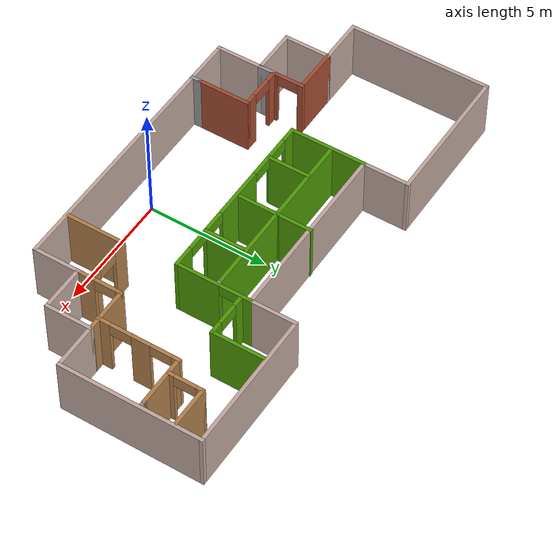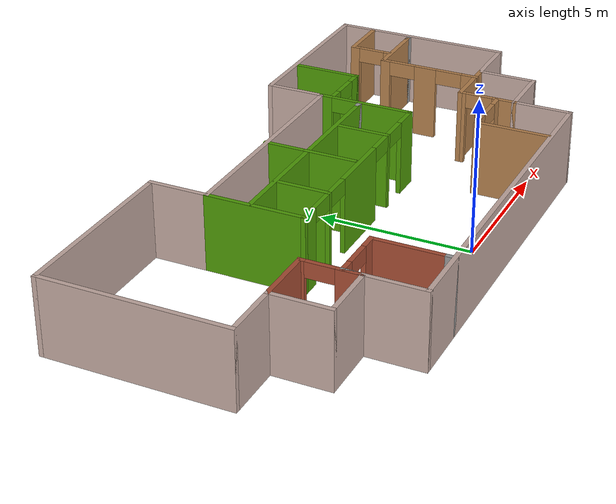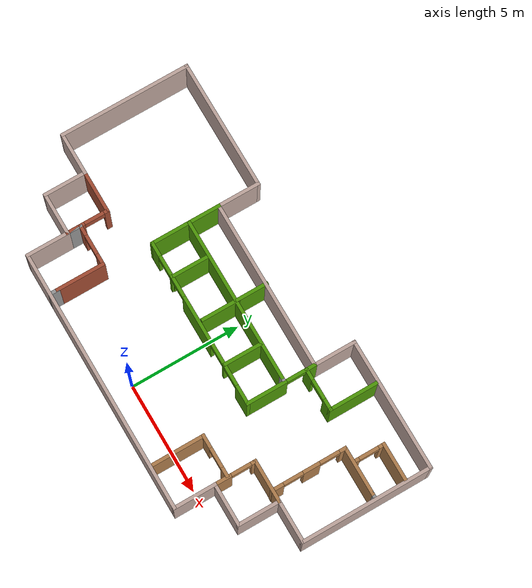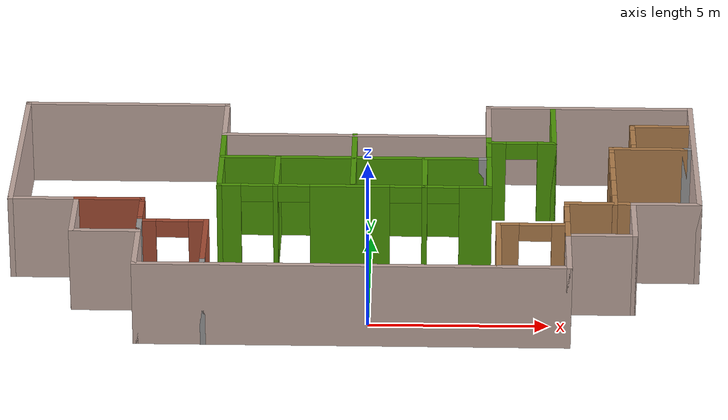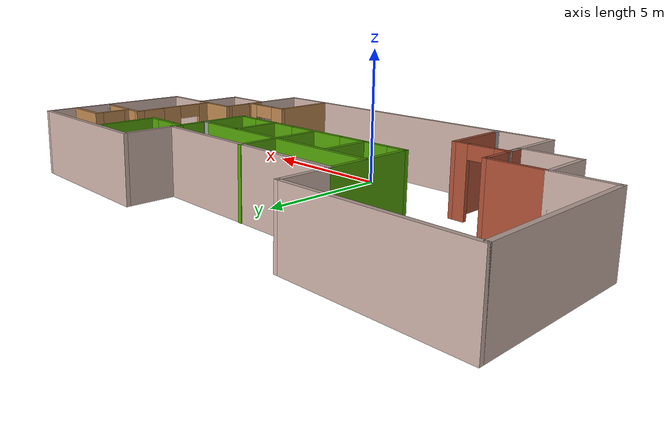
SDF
<?xml version='1.0'?>
<sdf version='1.6'>
  <model name='office'>
    <pose frame=''>-0.425261 3.65756 0 0 -0 0</pose>
    <link name='Wall_10'>
      <collision name='Wall_10_Collision'>
        <geometry>
          <box>
            <size>2 0.15 2.5</size>
          </box>
        </geometry>
        <pose frame=''>0 0 1.25 0 -0 0</pose>
      </collision>
      <visual name='Wall_10_Visual'>
        <pose frame=''>0 0 1.25 0 -0 0</pose>
        <geometry>
          <box>
            <size>2 0.15 2.5</size>
          </box>
        </geometry>
        <material>
          <script>
            <uri>file://media/materials/scripts/gazebo.material</uri>
            <name>Gazebo/Grey</name>
          </script>
          <ambient>0.760784 0.662745 0.627451 1</ambient>
        </material>
        <meta>
          <layer>0</layer>
        </meta>
      </visual>
      <pose frame=''>6.85 -2.925 0 0 -0 0</pose>
    </link>
    <link name='Wall_11'>
      <collision name='Wall_11_Collision'>
        <geometry>
          <box>
            <size>2 0.15 2.5</size>
          </box>
        </geometry>
        <pose frame=''>0 0 1.25 0 -0 0</pose>
      </collision>
      <visual name='Wall_11_Visual'>
        <pose frame=''>0 0 1.25 0 -0 0</pose>
        <geometry>
          <box>
            <size>2 0.15 2.5</size>
          </box>
        </geometry>
        <material>
          <script>
            <uri>file://media/materials/scripts/gazebo.material</uri>
            <name>Gazebo/Grey</name>
          </script>
          <ambient>0.760784 0.662745 0.627451 1</ambient>
        </material>
        <meta>
          <layer>0</layer>
        </meta>
      </visual>
      <pose frame=''>7.775 -2 0 0 -0 1.5708</pose>
    </link>
    <link name='Wall_12'>
      <collision name='Wall_12_Collision'>
        <geometry>
          <box>
            <size>2 0.15 2.5</size>
          </box>
        </geometry>
        <pose frame=''>0 0 1.25 0 -0 0</pose>
      </collision>
      <visual name='Wall_12_Visual'>
        <pose frame=''>0 0 1.25 0 -0 0</pose>
        <geometry>
          <box>
            <size>2 0.15 2.5</size>
          </box>
        </geometry>
        <material>
          <script>
            <uri>file://media/materials/scripts/gazebo.material</uri>
            <name>Gazebo/Grey</name>
          </script>
          <ambient>0.760784 0.662745 0.627451 1</ambient>
        </material>
        <meta>
          <layer>0</layer>
        </meta>
      </visual>
      <pose frame=''>8.7 -1.075 0 0 -0 0</pose>
    </link>
    <link name='Wall_13'>
      <collision name='Wall_13_Collision'>
        <geometry>
          <box>
            <size>6 0.15 2.5</size>
          </box>
        </geometry>
        <pose frame=''>0 0 1.25 0 -0 0</pose>
      </collision>
      <visual name='Wall_13_Visual'>
        <pose frame=''>0 0 1.25 0 -0 0</pose>
        <geometry>
          <box>
            <size>6 0.15 2.5</size>
          </box>
        </geometry>
        <material>
          <script>
            <uri>file://media/materials/scripts/gazebo.material</uri>
            <name>Gazebo/Grey</name>
          </script>
          <ambient>0.760784 0.662745 0.627451 1</ambient>
        </material>
        <meta>
          <layer>0</layer>
        </meta>
      </visual>
      <pose frame=''>9.625 1.85 0 0 -0 1.5708</pose>
    </link>
    <link name='Wall_14'>
      <collision name='Wall_14_Collision'>
        <geometry>
          <box>
            <size>6 0.15 2.5</size>
          </box>
        </geometry>
        <pose frame=''>0 0 1.25 0 -0 0</pose>
      </collision>
      <visual name='Wall_14_Visual'>
        <pose frame=''>0 0 1.25 0 -0 0</pose>
        <geometry>
          <box>
            <size>6 0.15 2.5</size>
          </box>
        </geometry>
        <material>
          <script>
            <uri>file://media/materials/scripts/gazebo.material</uri>
            <name>Gazebo/Grey</name>
          </script>
          <ambient>0.760784 0.662745 0.627451 1</ambient>
        </material>
        <meta>
          <layer>0</layer>
        </meta>
      </visual>
      <pose frame=''>6.7 4.775 0 0 -0 3.14159</pose>
    </link>
    <link name='Wall_15'>
      <collision name='Wall_15_Collision'>
        <geometry>
          <box>
            <size>2 0.15 2.5</size>
          </box>
        </geometry>
        <pose frame=''>0 0 1.25 0 -0 0</pose>
      </collision>
      <visual name='Wall_15_Visual'>
        <pose frame=''>0 0 1.25 0 -0 0</pose>
        <geometry>
          <box>
            <size>2 0.15 2.5</size>
          </box>
        </geometry>
        <material>
          <script>
            <uri>file://media/materials/scripts/gazebo.material</uri>
            <name>Gazebo/Grey</name>
          </script>
          <ambient>0.760784 0.662745 0.627451 1</ambient>
        </material>
        <meta>
          <layer>0</layer>
        </meta>
      </visual>
      <pose frame=''>3.775 3.85 0 0 -0 -1.5708</pose>
    </link>
    <link name='Wall_16'>
      <collision name='Wall_16_Collision'>
        <geometry>
          <box>
            <size>7.75 0.15 2.5</size>
          </box>
        </geometry>
        <pose frame=''>0 0 1.25 0 -0 0</pose>
      </collision>
      <visual name='Wall_16_Visual'>
        <pose frame=''>0 0 1.25 0 -0 0</pose>
        <geometry>
          <box>
            <size>7.75 0.15 2.5</size>
          </box>
        </geometry>
        <material>
          <script>
            <uri>file://media/materials/scripts/gazebo.material</uri>
            <name>Gazebo/Grey</name>
          </script>
          <ambient>0.760784 0.662745 0.627451 1</ambient>
        </material>
        <meta>
          <layer>0</layer>
        </meta>
      </visual>
      <pose frame=''>-0.025 2.925 0 0 -0 3.14159</pose>
    </link>
    <link name='Wall_17'>
      <collision name='Wall_17_Collision'>
        <geometry>
          <box>
            <size>2 0.15 2.5</size>
          </box>
        </geometry>
        <pose frame=''>0 0 1.25 0 -0 0</pose>
      </collision>
      <visual name='Wall_17_Visual'>
        <pose frame=''>0 0 1.25 0 -0 0</pose>
        <geometry>
          <box>
            <size>2 0.15 2.5</size>
          </box>
        </geometry>
        <material>
          <script>
            <uri>file://media/materials/scripts/gazebo.material</uri>
            <name>Gazebo/Grey</name>
          </script>
          <ambient>0.760784 0.662745 0.627451 1</ambient>
        </material>
        <meta>
          <layer>0</layer>
        </meta>
      </visual>
      <pose frame=''>-3.825 3.85 0 0 -0 1.5708</pose>
    </link>
    <link name='Wall_18'>
      <collision name='Wall_18_Collision'>
        <geometry>
          <box>
            <size>5.95 0.15 2.5</size>
          </box>
        </geometry>
        <pose frame=''>0 0 1.25 0 -0 0</pose>
      </collision>
      <visual name='Wall_18_Visual'>
        <pose frame=''>0 0 1.25 0 -0 0</pose>
        <geometry>
          <box>
            <size>5.95 0.15 2.5</size>
          </box>
        </geometry>
        <material>
          <script>
            <uri>file://media/materials/scripts/gazebo.material</uri>
            <name>Gazebo/Grey</name>
          </script>
          <ambient>0.760784 0.662745 0.627451 1</ambient>
        </material>
        <meta>
          <layer>0</layer>
        </meta>
      </visual>
      <pose frame=''>-6.725 4.775 0 0 -0 3.14159</pose>
    </link>
    <link name='Wall_19'>
      <collision name='Wall_19_Collision'>
        <geometry>
          <box>
            <size>0.15 0.15 2.5</size>
          </box>
        </geometry>
        <pose frame=''>0 0 1.25 0 -0 0</pose>
      </collision>
      <visual name='Wall_19_Visual'>
        <pose frame=''>0 0 1.25 0 -0 0</pose>
        <geometry>
          <box>
            <size>0.15 0.15 2.5</size>
          </box>
        </geometry>
        <material>
          <script>
            <uri>file://media/materials/scripts/gazebo.material</uri>
            <name>Gazebo/Grey</name>
          </script>
          <ambient>0.760784 0.662745 0.627451 1</ambient>
        </material>
        <meta>
          <layer>0</layer>
        </meta>
      </visual>
      <pose frame=''>-9.625 4.775 0 0 -0 0</pose>
    </link>
    <link name='Wall_2'>
      <collision name='Wall_2_Collision'>
        <geometry>
          <box>
            <size>6 0.15 2.5</size>
          </box>
        </geometry>
        <pose frame=''>0 0 1.25 0 -0 0</pose>
      </collision>
      <visual name='Wall_2_Visual'>
        <pose frame=''>0 0 1.25 0 -0 0</pose>
        <geometry>
          <box>
            <size>6 0.15 2.5</size>
          </box>
        </geometry>
        <material>
          <script>
            <uri>file://media/materials/scripts/gazebo.material</uri>
            <name>Gazebo/Grey</name>
          </script>
          <ambient>0.760784 0.662745 0.627451 1</ambient>
        </material>
        <meta>
          <layer>0</layer>
        </meta>
      </visual>
      <pose frame=''>-9.625 1.85 0 0 -0 -1.5708</pose>
    </link>
    <link name='Wall_21'>
      <collision name='Wall_21_Collision'>
        <geometry>
          <box>
            <size>2 0.15 2.5</size>
          </box>
        </geometry>
        <pose frame=''>0 0 1.25 0 -0 0</pose>
      </collision>
      <visual name='Wall_21_Visual'>
        <pose frame=''>0 0 1.25 0 -0 0</pose>
        <geometry>
          <box>
            <size>2 0.15 2.5</size>
          </box>
        </geometry>
        <material>
          <script>
            <uri>file://media/materials/scripts/gazebo.material</uri>
            <name>Gazebo/Bricks</name>
          </script>
          <ambient>1 0.764706 0.305882 1</ambient>
        </material>
        <meta>
          <layer>0</layer>
        </meta>
      </visual>
      <pose frame=''>-6.85 -1.075 0 0 -0 0</pose>
    </link>
    <link name='Wall_22'>
      <pose frame=''>-5.925 -2 0 0 -0 -1.5708</pose>
      <visual name='Wall_22_Visual_0'>
        <pose frame=''>-0.880847 0 1.25 0 -0 0</pose>
        <geometry>
          <box>
            <size>0.238307 0.15 2.5</size>
          </box>
        </geometry>
        <material>
          <script>
            <uri>file://media/materials/scripts/gazebo.material</uri>
            <name>Gazebo/Bricks</name>
          </script>
          <ambient>1 0.764706 0.305882 1</ambient>
        </material>
        <meta>
          <layer>0</layer>
        </meta>
      </visual>
      <collision name='Wall_22_Collision_0'>
        <geometry>
          <box>
            <size>0.238307 0.15 2.5</size>
          </box>
        </geometry>
        <pose frame=''>-0.880847 0 1.25 0 -0 0</pose>
      </collision>
      <visual name='Wall_22_Visual_1'>
        <pose frame=''>0.569153 0 1.25 0 -0 0</pose>
        <geometry>
          <box>
            <size>0.861693 0.15 2.5</size>
          </box>
        </geometry>
        <material>
          <script>
            <uri>file://media/materials/scripts/gazebo.material</uri>
            <name>Gazebo/Bricks</name>
          </script>
          <ambient>1 0.764706 0.305882 1</ambient>
        </material>
        <meta>
          <layer>0</layer>
        </meta>
      </visual>
      <collision name='Wall_22_Collision_1'>
        <geometry>
          <box>
            <size>0.861693 0.15 2.5</size>
          </box>
        </geometry>
        <pose frame=''>0.569153 0 1.25 0 -0 0</pose>
      </collision>
      <visual name='Wall_22_Visual_2'>
        <pose frame=''>-0.311693 0 2.25 0 -0 0</pose>
        <geometry>
          <box>
            <size>0.9 0.15 0.5</size>
          </box>
        </geometry>
        <material>
          <script>
            <uri>file://media/materials/scripts/gazebo.material</uri>
            <name>Gazebo/Bricks</name>
          </script>
          <ambient>1 0.764706 0.305882 1</ambient>
        </material>
        <meta>
          <layer>0</layer>
        </meta>
      </visual>
      <collision name='Wall_22_Collision_2'>
        <geometry>
          <box>
            <size>0.9 0.15 0.5</size>
          </box>
        </geometry>
        <pose frame=''>-0.311693 0 2.25 0 -0 0</pose>
      </collision>
    </link>
    <link name='Wall_23'>
      <collision name='Wall_23_Collision'>
        <geometry>
          <box>
            <size>0.75 0.15 2.5</size>
          </box>
        </geometry>
        <pose frame=''>0 0 1.25 0 -0 0</pose>
      </collision>
      <visual name='Wall_23_Visual'>
        <pose frame=''>0 0 1.25 0 -0 0</pose>
        <geometry>
          <box>
            <size>0.75 0.15 2.5</size>
          </box>
        </geometry>
        <material>
          <script>
            <uri>file://media/materials/scripts/gazebo.material</uri>
            <name>Gazebo/Grey</name>
          </script>
          <ambient>1 1 1 1</ambient>
        </material>
        <meta>
          <layer>0</layer>
        </meta>
      </visual>
      <pose frame=''>-5.925 -2.625 0 0 -0 1.5708</pose>
    </link>
    <link name='Wall_24'>
      <pose frame=''>-5 -2.325 0 0 -0 0</pose>
      <visual name='Wall_24_Visual_0'>
        <pose frame=''>-0.733979 0 1.25 0 -0 0</pose>
        <geometry>
          <box>
            <size>0.532042 0.15 2.5</size>
          </box>
        </geometry>
        <material>
          <script>
            <uri>file://media/materials/scripts/gazebo.material</uri>
            <name>Gazebo/Bricks</name>
          </script>
          <ambient>1 0.764706 0.305882 1</ambient>
        </material>
        <meta>
          <layer>0</layer>
        </meta>
      </visual>
      <collision name='Wall_24_Collision_0'>
        <geometry>
          <box>
            <size>0.532042 0.15 2.5</size>
          </box>
        </geometry>
        <pose frame=''>-0.733979 0 1.25 0 -0 0</pose>
      </collision>
      <visual name='Wall_24_Visual_1'>
        <pose frame=''>0.716021 0 1.25 0 -0 0</pose>
        <geometry>
          <box>
            <size>0.567958 0.15 2.5</size>
          </box>
        </geometry>
        <material>
          <script>
            <uri>file://media/materials/scripts/gazebo.material</uri>
            <name>Gazebo/Bricks</name>
          </script>
          <ambient>1 0.764706 0.305882 1</ambient>
        </material>
        <meta>
          <layer>0</layer>
        </meta>
      </visual>
      <collision name='Wall_24_Collision_1'>
        <geometry>
          <box>
            <size>0.567958 0.15 2.5</size>
          </box>
        </geometry>
        <pose frame=''>0.716021 0 1.25 0 -0 0</pose>
      </collision>
      <visual name='Wall_24_Visual_2'>
        <pose frame=''>-0.017958 0 2.25 0 -0 0</pose>
        <geometry>
          <box>
            <size>0.9 0.15 0.5</size>
          </box>
        </geometry>
        <material>
          <script>
            <uri>file://media/materials/scripts/gazebo.material</uri>
            <name>Gazebo/Bricks</name>
          </script>
          <ambient>1 0.764706 0.305882 1</ambient>
        </material>
        <meta>
          <layer>0</layer>
        </meta>
      </visual>
      <collision name='Wall_24_Collision_2'>
        <geometry>
          <box>
            <size>0.9 0.15 0.5</size>
          </box>
        </geometry>
        <pose frame=''>-0.017958 0 2.25 0 -0 0</pose>
      </collision>
    </link>
    <link name='Wall_25'>
      <collision name='Wall_25_Collision'>
        <geometry>
          <box>
            <size>2.25 0.15 2.5</size>
          </box>
        </geometry>
        <pose frame=''>0 0 1.25 0 -0 0</pose>
      </collision>
      <visual name='Wall_25_Visual'>
        <pose frame=''>0 0 1.25 0 -0 0</pose>
        <geometry>
          <box>
            <size>2.25 0.15 2.5</size>
          </box>
        </geometry>
        <material>
          <script>
            <uri>file://media/materials/scripts/gazebo.material</uri>
            <name>Gazebo/Bricks</name>
          </script>
          <ambient>1 0.764706 0.305882 1</ambient>
        </material>
        <meta>
          <layer>0</layer>
        </meta>
      </visual>
      <pose frame=''>-4.075 -3.375 0 0 -0 -1.5708</pose>
    </link>
    <link name='Wall_26'>
      <collision name='Wall_26_Collision'>
        <geometry>
          <box>
            <size>0.5 0.15 2.5</size>
          </box>
        </geometry>
        <pose frame=''>0 0 1.25 0 -0 0</pose>
      </collision>
      <visual name='Wall_26_Visual'>
        <pose frame=''>0 0 1.25 0 -0 0</pose>
        <geometry>
          <box>
            <size>0.5 0.15 2.5</size>
          </box>
        </geometry>
        <material>
          <script>
            <uri>file://media/materials/scripts/gazebo.material</uri>
            <name>Gazebo/Grey</name>
          </script>
          <ambient>1 1 1 1</ambient>
        </material>
        <meta>
          <layer>0</layer>
        </meta>
      </visual>
      <pose frame=''>-4.075 -4.6 0 0 -0 -1.5708</pose>
    </link>
    <link name='Wall_33'>
      <collision name='Wall_33_Collision'>
        <geometry>
          <box>
            <size>2 0.15 2.5</size>
          </box>
        </geometry>
        <pose frame=''>0 0 1.25 0 -0 0</pose>
      </collision>
      <visual name='Wall_33_Visual'>
        <pose frame=''>0 0 1.25 0 -0 0</pose>
        <geometry>
          <box>
            <size>2 0.15 2.5</size>
          </box>
        </geometry>
        <material>
          <script>
            <uri>file://media/materials/scripts/gazebo.material</uri>
            <name>Gazebo/Wood</name>
          </script>
          <ambient>0.996078 0.47451 0.0196078 1</ambient>
        </material>
        <meta>
          <layer>0</layer>
        </meta>
      </visual>
      <pose frame=''>6.85 -1.075 0 0 -0 3.14159</pose>
    </link>
    <link name='Wall_34'>
      <pose frame=''>5.925 -2 0 0 -0 -1.5708</pose>
      <visual name='Wall_34_Visual_0'>
        <pose frame=''>-0.860151 0 1.25 0 -0 0</pose>
        <geometry>
          <box>
            <size>0.279699 0.15 2.5</size>
          </box>
        </geometry>
        <material>
          <script>
            <uri>file://media/materials/scripts/gazebo.material</uri>
            <name>Gazebo/Wood</name>
          </script>
          <ambient>0.996078 0.47451 0.0196078 1</ambient>
        </material>
        <meta>
          <layer>0</layer>
        </meta>
      </visual>
      <collision name='Wall_34_Collision_0'>
        <geometry>
          <box>
            <size>0.279699 0.15 2.5</size>
          </box>
        </geometry>
        <pose frame=''>-0.860151 0 1.25 0 -0 0</pose>
      </collision>
      <visual name='Wall_34_Visual_1'>
        <pose frame=''>0.589849 0 1.25 0 -0 0</pose>
        <geometry>
          <box>
            <size>0.820301 0.15 2.5</size>
          </box>
        </geometry>
        <material>
          <script>
            <uri>file://media/materials/scripts/gazebo.material</uri>
            <name>Gazebo/Wood</name>
          </script>
          <ambient>0.996078 0.47451 0.0196078 1</ambient>
        </material>
        <meta>
          <layer>0</layer>
        </meta>
      </visual>
      <collision name='Wall_34_Collision_1'>
        <geometry>
          <box>
            <size>0.820301 0.15 2.5</size>
          </box>
        </geometry>
        <pose frame=''>0.589849 0 1.25 0 -0 0</pose>
      </collision>
      <visual name='Wall_34_Visual_2'>
        <pose frame=''>-0.270301 0 2.25 0 -0 0</pose>
        <geometry>
          <box>
            <size>0.9 0.15 0.5</size>
          </box>
        </geometry>
        <material>
          <script>
            <uri>file://media/materials/scripts/gazebo.material</uri>
            <name>Gazebo/Wood</name>
          </script>
          <ambient>0.996078 0.47451 0.0196078 1</ambient>
        </material>
        <meta>
          <layer>0</layer>
        </meta>
      </visual>
      <collision name='Wall_34_Collision_2'>
        <geometry>
          <box>
            <size>0.9 0.15 0.5</size>
          </box>
        </geometry>
        <pose frame=''>-0.270301 0 2.25 0 -0 0</pose>
      </collision>
    </link>
    <link name='Wall_36'>
      <pose frame=''>4.93629 -2.34078 0 0 -0 3.14159</pose>
      <visual name='Wall_36_Visual_0'>
        <pose frame=''>-0.772106 0 1.25 0 -0 0</pose>
        <geometry>
          <box>
            <size>0.455789 0.15 2.5</size>
          </box>
        </geometry>
        <material>
          <script>
            <uri>file://media/materials/scripts/gazebo.material</uri>
            <name>Gazebo/Wood</name>
          </script>
          <ambient>0.996078 0.47451 0.0196078 1</ambient>
        </material>
        <meta>
          <layer>0</layer>
        </meta>
      </visual>
      <collision name='Wall_36_Collision_0'>
        <geometry>
          <box>
            <size>0.455789 0.15 2.5</size>
          </box>
        </geometry>
        <pose frame=''>-0.772106 0 1.25 0 -0 0</pose>
      </collision>
      <visual name='Wall_36_Visual_1'>
        <pose frame=''>0.677894 0 1.25 0 -0 0</pose>
        <geometry>
          <box>
            <size>0.644211 0.15 2.5</size>
          </box>
        </geometry>
        <material>
          <script>
            <uri>file://media/materials/scripts/gazebo.material</uri>
            <name>Gazebo/Wood</name>
          </script>
          <ambient>0.996078 0.47451 0.0196078 1</ambient>
        </material>
        <meta>
          <layer>0</layer>
        </meta>
      </visual>
      <collision name='Wall_36_Collision_1'>
        <geometry>
          <box>
            <size>0.644211 0.15 2.5</size>
          </box>
        </geometry>
        <pose frame=''>0.677894 0 1.25 0 -0 0</pose>
      </collision>
      <visual name='Wall_36_Visual_2'>
        <pose frame=''>-0.094211 0 2.25 0 -0 0</pose>
        <geometry>
          <box>
            <size>0.9 0.15 0.5</size>
          </box>
        </geometry>
        <material>
          <script>
            <uri>file://media/materials/scripts/gazebo.material</uri>
            <name>Gazebo/Wood</name>
          </script>
          <ambient>0.996078 0.47451 0.0196078 1</ambient>
        </material>
        <meta>
          <layer>0</layer>
        </meta>
      </visual>
      <collision name='Wall_36_Collision_2'>
        <geometry>
          <box>
            <size>0.9 0.15 0.5</size>
          </box>
        </geometry>
        <pose frame=''>-0.094211 0 2.25 0 -0 0</pose>
      </collision>
    </link>
    <link name='Wall_37'>
      <collision name='Wall_37_Collision'>
        <geometry>
          <box>
            <size>2.5 0.15 2.5</size>
          </box>
        </geometry>
        <pose frame=''>0 0 1.25 0 -0 0</pose>
      </collision>
      <visual name='Wall_37_Visual'>
        <pose frame=''>0 0 1.25 0 -0 0</pose>
        <geometry>
          <box>
            <size>2.5 0.15 2.5</size>
          </box>
        </geometry>
        <material>
          <script>
            <uri>file://media/materials/scripts/gazebo.material</uri>
            <name>Gazebo/Wood</name>
          </script>
          <ambient>0.996078 0.47451 0.0196078 1</ambient>
        </material>
        <meta>
          <layer>0</layer>
        </meta>
      </visual>
      <pose frame=''>4.01129 -3.51578 0 0 -0 -1.5708</pose>
    </link>
    <link name='Wall_39'>
      <pose frame=''>7.2711 0.584434 0 0 -0 1.5708</pose>
      <visual name='Wall_39_Visual_0'>
        <pose frame=''>-1.45906 0 1.25 0 -0 0</pose>
        <geometry>
          <box>
            <size>0.581879 0.15 2.5</size>
          </box>
        </geometry>
        <material>
          <script>
            <uri>file://media/materials/scripts/gazebo.material</uri>
            <name>Gazebo/Wood</name>
          </script>
          <ambient>0.996078 0.47451 0.0196078 1</ambient>
        </material>
        <meta>
          <layer>0</layer>
        </meta>
      </visual>
      <collision name='Wall_39_Collision_0'>
        <geometry>
          <box>
            <size>0.581879 0.15 2.5</size>
          </box>
        </geometry>
        <pose frame=''>-1.45906 0 1.25 0 -0 0</pose>
      </collision>
      <visual name='Wall_39_Visual_1'>
        <pose frame=''>0.119786 0 1.25 0 -0 0</pose>
        <geometry>
          <box>
            <size>0.775813 0.15 2.5</size>
          </box>
        </geometry>
        <material>
          <script>
            <uri>file://media/materials/scripts/gazebo.material</uri>
            <name>Gazebo/Wood</name>
          </script>
          <ambient>0.996078 0.47451 0.0196078 1</ambient>
        </material>
        <meta>
          <layer>0</layer>
        </meta>
      </visual>
      <collision name='Wall_39_Collision_1'>
        <geometry>
          <box>
            <size>0.775813 0.15 2.5</size>
          </box>
        </geometry>
        <pose frame=''>0.119786 0 1.25 0 -0 0</pose>
      </collision>
      <visual name='Wall_39_Visual_2'>
        <pose frame=''>1.57885 0 1.25 0 -0 0</pose>
        <geometry>
          <box>
            <size>0.342308 0.15 2.5</size>
          </box>
        </geometry>
        <material>
          <script>
            <uri>file://media/materials/scripts/gazebo.material</uri>
            <name>Gazebo/Wood</name>
          </script>
          <ambient>0.996078 0.47451 0.0196078 1</ambient>
        </material>
        <meta>
          <layer>0</layer>
        </meta>
      </visual>
      <collision name='Wall_39_Collision_2'>
        <geometry>
          <box>
            <size>0.342308 0.15 2.5</size>
          </box>
        </geometry>
        <pose frame=''>1.57885 0 1.25 0 -0 0</pose>
      </collision>
      <visual name='Wall_39_Visual_3'>
        <pose frame=''>-0.718121 0 2.25 0 -0 0</pose>
        <geometry>
          <box>
            <size>0.9 0.15 0.5</size>
          </box>
        </geometry>
        <material>
          <script>
            <uri>file://media/materials/scripts/gazebo.material</uri>
            <name>Gazebo/Wood</name>
          </script>
          <ambient>0.996078 0.47451 0.0196078 1</ambient>
        </material>
        <meta>
          <layer>0</layer>
        </meta>
      </visual>
      <collision name='Wall_39_Collision_3'>
        <geometry>
          <box>
            <size>0.9 0.15 0.5</size>
          </box>
        </geometry>
        <pose frame=''>-0.718121 0 2.25 0 -0 0</pose>
      </collision>
      <visual name='Wall_39_Visual_4'>
        <pose frame=''>0.957692 0 2.25 0 -0 0</pose>
        <geometry>
          <box>
            <size>0.9 0.15 0.5</size>
          </box>
        </geometry>
        <material>
          <script>
            <uri>file://media/materials/scripts/gazebo.material</uri>
            <name>Gazebo/Wood</name>
          </script>
          <ambient>0.996078 0.47451 0.0196078 1</ambient>
        </material>
        <meta>
          <layer>0</layer>
        </meta>
      </visual>
      <collision name='Wall_39_Collision_4'>
        <geometry>
          <box>
            <size>0.9 0.15 0.5</size>
          </box>
        </geometry>
        <pose frame=''>0.957692 0 2.25 0 -0 0</pose>
      </collision>
    </link>
    <link name='Wall_4'>
      <collision name='Wall_4_Collision'>
        <geometry>
          <box>
            <size>2 0.15 2.5</size>
          </box>
        </geometry>
        <pose frame=''>0 0 1.25 0 -0 0</pose>
      </collision>
      <visual name='Wall_4_Visual'>
        <pose frame=''>0 0 1.25 0 -0 0</pose>
        <geometry>
          <box>
            <size>2 0.15 2.5</size>
          </box>
        </geometry>
        <material>
          <script>
            <uri>file://media/materials/scripts/gazebo.material</uri>
            <name>Gazebo/Grey</name>
          </script>
          <ambient>0.760784 0.662745 0.627451 1</ambient>
        </material>
        <meta>
          <layer>0</layer>
        </meta>
      </visual>
      <pose frame=''>-8.7 -1.075 0 0 -0 0</pose>
    </link>
    <link name='Wall_40'>
      <collision name='Wall_40_Collision'>
        <geometry>
          <box>
            <size>2.25 0.15 2.5</size>
          </box>
        </geometry>
        <pose frame=''>0 0 1.25 0 -0 0</pose>
      </collision>
      <visual name='Wall_40_Visual'>
        <pose frame=''>0 0 1.25 0 -0 0</pose>
        <geometry>
          <box>
            <size>2.25 0.15 2.5</size>
          </box>
        </geometry>
        <material>
          <script>
            <uri>file://media/materials/scripts/gazebo.material</uri>
            <name>Gazebo/Wood</name>
          </script>
          <ambient>0.996078 0.47451 0.0196078 1</ambient>
        </material>
        <meta>
          <layer>0</layer>
        </meta>
      </visual>
      <pose frame=''>8.3211 2.25943 0 0 -0 0</pose>
    </link>
    <link name='Wall_41'>
      <collision name='Wall_41_Collision'>
        <geometry>
          <box>
            <size>0.25 0.15 2.5</size>
          </box>
        </geometry>
        <pose frame=''>0 0 1.25 0 -0 0</pose>
      </collision>
      <visual name='Wall_41_Visual'>
        <pose frame=''>0 0 1.25 0 -0 0</pose>
        <geometry>
          <box>
            <size>0.25 0.15 2.5</size>
          </box>
        </geometry>
        <material>
          <script>
            <uri>file://media/materials/scripts/gazebo.material</uri>
            <name>Gazebo/Grey</name>
          </script>
          <ambient>1 1 1 1</ambient>
        </material>
        <meta>
          <layer>0</layer>
        </meta>
      </visual>
      <pose frame=''>9.4211 2.25943 0 0 -0 0</pose>
    </link>
    <link name='Wall_43'>
      <pose frame=''>7.9095 2.98926 0 0 -0 1.5708</pose>
      <visual name='Wall_43_Visual_0'>
        <pose frame=''>-0.612012 0 1.25 0 -0 0</pose>
        <geometry>
          <box>
            <size>0.275977 0.15 2.5</size>
          </box>
        </geometry>
        <material>
          <script>
            <uri>file://media/materials/scripts/gazebo.material</uri>
            <name>Gazebo/Wood</name>
          </script>
          <ambient>0.996078 0.47451 0.0196078 1</ambient>
        </material>
        <meta>
          <layer>0</layer>
        </meta>
      </visual>
      <collision name='Wall_43_Collision_0'>
        <geometry>
          <box>
            <size>0.275977 0.15 2.5</size>
          </box>
        </geometry>
        <pose frame=''>-0.612012 0 1.25 0 -0 0</pose>
      </collision>
      <visual name='Wall_43_Visual_1'>
        <pose frame=''>0.587988 0 1.25 0 -0 0</pose>
        <geometry>
          <box>
            <size>0.324023 0.15 2.5</size>
          </box>
        </geometry>
        <material>
          <script>
            <uri>file://media/materials/scripts/gazebo.material</uri>
            <name>Gazebo/Wood</name>
          </script>
          <ambient>0.996078 0.47451 0.0196078 1</ambient>
        </material>
        <meta>
          <layer>0</layer>
        </meta>
      </visual>
      <collision name='Wall_43_Collision_1'>
        <geometry>
          <box>
            <size>0.324023 0.15 2.5</size>
          </box>
        </geometry>
        <pose frame=''>0.587988 0 1.25 0 -0 0</pose>
      </collision>
      <visual name='Wall_43_Visual_2'>
        <pose frame=''>-0.024023 0 2.25 0 -0 0</pose>
        <geometry>
          <box>
            <size>0.9 0.15 0.5</size>
          </box>
        </geometry>
        <material>
          <script>
            <uri>file://media/materials/scripts/gazebo.material</uri>
            <name>Gazebo/Wood</name>
          </script>
          <ambient>0.996078 0.47451 0.0196078 1</ambient>
        </material>
        <meta>
          <layer>0</layer>
        </meta>
      </visual>
      <collision name='Wall_43_Collision_2'>
        <geometry>
          <box>
            <size>0.9 0.15 0.5</size>
          </box>
        </geometry>
        <pose frame=''>-0.024023 0 2.25 0 -0 0</pose>
      </collision>
    </link>
    <link name='Wall_44'>
      <collision name='Wall_44_Collision'>
        <geometry>
          <box>
            <size>1.75 0.15 2.5</size>
          </box>
        </geometry>
        <pose frame=''>0 0 1.25 0 -0 0</pose>
      </collision>
      <visual name='Wall_44_Visual'>
        <pose frame=''>0 0 1.25 0 -0 0</pose>
        <geometry>
          <box>
            <size>1.75 0.15 2.5</size>
          </box>
        </geometry>
        <material>
          <script>
            <uri>file://media/materials/scripts/gazebo.material</uri>
            <name>Gazebo/Wood</name>
          </script>
          <ambient>0.996078 0.47451 0.0196078 1</ambient>
        </material>
        <meta>
          <layer>0</layer>
        </meta>
      </visual>
      <pose frame=''>8.7095 3.66426 0 0 -0 0</pose>
    </link>
    <link name='Wall_46'>
      <pose frame=''>3.775 1.375 0 0 -0 -1.5708</pose>
      <visual name='Wall_46_Visual_0'>
        <pose frame=''>-1.39372 0 1.25 0 -0 0</pose>
        <geometry>
          <box>
            <size>0.46257 0.15 2.5</size>
          </box>
        </geometry>
        <material>
          <script>
            <uri>file://media/materials/scripts/gazebo.material</uri>
            <name>Gazebo/Grey</name>
          </script>
          <ambient>0.305882 0.603922 0.0235294 1</ambient>
        </material>
        <meta>
          <layer>0</layer>
        </meta>
      </visual>
      <collision name='Wall_46_Collision_0'>
        <geometry>
          <box>
            <size>0.46257 0.15 2.5</size>
          </box>
        </geometry>
        <pose frame=''>-1.39372 0 1.25 0 -0 0</pose>
      </collision>
      <visual name='Wall_46_Visual_1'>
        <pose frame=''>0.681285 0 1.25 0 -0 0</pose>
        <geometry>
          <box>
            <size>1.88743 0.15 2.5</size>
          </box>
        </geometry>
        <material>
          <script>
            <uri>file://media/materials/scripts/gazebo.material</uri>
            <name>Gazebo/Grey</name>
          </script>
          <ambient>0.305882 0.603922 0.0235294 1</ambient>
        </material>
        <meta>
          <layer>0</layer>
        </meta>
      </visual>
      <collision name='Wall_46_Collision_1'>
        <geometry>
          <box>
            <size>1.88743 0.15 2.5</size>
          </box>
        </geometry>
        <pose frame=''>0.681285 0 1.25 0 -0 0</pose>
      </collision>
      <visual name='Wall_46_Visual_2'>
        <pose frame=''>-0.71243 0 2.25 0 -0 0</pose>
        <geometry>
          <box>
            <size>0.9 0.15 0.5</size>
          </box>
        </geometry>
        <material>
          <script>
            <uri>file://media/materials/scripts/gazebo.material</uri>
            <name>Gazebo/Grey</name>
          </script>
          <ambient>0.305882 0.603922 0.0235294 1</ambient>
        </material>
        <meta>
          <layer>0</layer>
        </meta>
      </visual>
      <collision name='Wall_46_Collision_2'>
        <geometry>
          <box>
            <size>0.9 0.15 0.5</size>
          </box>
        </geometry>
        <pose frame=''>-0.71243 0 2.25 0 -0 0</pose>
      </collision>
    </link>
    <link name='Wall_47'>
      <pose frame=''>-0.025 -0.175 0 0 -0 3.14159</pose>
      <visual name='Wall_47_Visual_0'>
        <pose frame=''>-3.41344 0 1.25 0 -0 0</pose>
        <geometry>
          <box>
            <size>0.92312 0.15 2.5</size>
          </box>
        </geometry>
        <material>
          <script>
            <uri>file://media/materials/scripts/gazebo.material</uri>
            <name>Gazebo/Grey</name>
          </script>
          <ambient>0.305882 0.603922 0.0235294 1</ambient>
        </material>
        <meta>
          <layer>0</layer>
        </meta>
      </visual>
      <collision name='Wall_47_Collision_0'>
        <geometry>
          <box>
            <size>0.92312 0.15 2.5</size>
          </box>
        </geometry>
        <pose frame=''>-3.41344 0 1.25 0 -0 0</pose>
      </collision>
      <visual name='Wall_47_Visual_1'>
        <pose frame=''>-1.97653 0 1.25 0 -0 0</pose>
        <geometry>
          <box>
            <size>0.150708 0.15 2.5</size>
          </box>
        </geometry>
        <material>
          <script>
            <uri>file://media/materials/scripts/gazebo.material</uri>
            <name>Gazebo/Grey</name>
          </script>
          <ambient>0.305882 0.603922 0.0235294 1</ambient>
        </material>
        <meta>
          <layer>0</layer>
        </meta>
      </visual>
      <collision name='Wall_47_Collision_1'>
        <geometry>
          <box>
            <size>0.150708 0.15 2.5</size>
          </box>
        </geometry>
        <pose frame=''>-1.97653 0 1.25 0 -0 0</pose>
      </collision>
      <visual name='Wall_47_Visual_2'>
        <pose frame=''>0.124889 0 1.25 0 -0 0</pose>
        <geometry>
          <box>
            <size>2.25212 0.15 2.5</size>
          </box>
        </geometry>
        <material>
          <script>
            <uri>file://media/materials/scripts/gazebo.material</uri>
            <name>Gazebo/Grey</name>
          </script>
          <ambient>0.305882 0.603922 0.0235294 1</ambient>
        </material>
        <meta>
          <layer>0</layer>
        </meta>
      </visual>
      <collision name='Wall_47_Collision_2'>
        <geometry>
          <box>
            <size>2.25212 0.15 2.5</size>
          </box>
        </geometry>
        <pose frame=''>0.124889 0 1.25 0 -0 0</pose>
      </collision>
      <visual name='Wall_47_Visual_3'>
        <pose frame=''>2.21965 0 1.25 0 -0 0</pose>
        <geometry>
          <box>
            <size>0.137408 0.15 2.5</size>
          </box>
        </geometry>
        <material>
          <script>
            <uri>file://media/materials/scripts/gazebo.material</uri>
            <name>Gazebo/Grey</name>
          </script>
          <ambient>0.305882 0.603922 0.0235294 1</ambient>
        </material>
        <meta>
          <layer>0</layer>
        </meta>
      </visual>
      <collision name='Wall_47_Collision_3'>
        <geometry>
          <box>
            <size>0.137408 0.15 2.5</size>
          </box>
        </geometry>
        <pose frame=''>2.21965 0 1.25 0 -0 0</pose>
      </collision>
      <visual name='Wall_47_Visual_4'>
        <pose frame=''>3.53168 0 1.25 0 -0 0</pose>
        <geometry>
          <box>
            <size>0.686641 0.15 2.5</size>
          </box>
        </geometry>
        <material>
          <script>
            <uri>file://media/materials/scripts/gazebo.material</uri>
            <name>Gazebo/Grey</name>
          </script>
          <ambient>0.305882 0.603922 0.0235294 1</ambient>
        </material>
        <meta>
          <layer>0</layer>
        </meta>
      </visual>
      <collision name='Wall_47_Collision_4'>
        <geometry>
          <box>
            <size>0.686641 0.15 2.5</size>
          </box>
        </geometry>
        <pose frame=''>3.53168 0 1.25 0 -0 0</pose>
      </collision>
      <visual name='Wall_47_Visual_5'>
        <pose frame=''>-2.50188 0 2.25 0 -0 0</pose>
        <geometry>
          <box>
            <size>0.9 0.15 0.5</size>
          </box>
        </geometry>
        <material>
          <script>
            <uri>file://media/materials/scripts/gazebo.material</uri>
            <name>Gazebo/Grey</name>
          </script>
          <ambient>0.305882 0.603922 0.0235294 1</ambient>
        </material>
        <meta>
          <layer>0</layer>
        </meta>
      </visual>
      <collision name='Wall_47_Collision_5'>
        <geometry>
          <box>
            <size>0.9 0.15 0.5</size>
          </box>
        </geometry>
        <pose frame=''>-2.50188 0 2.25 0 -0 0</pose>
      </collision>
      <visual name='Wall_47_Visual_6'>
        <pose frame=''>-1.45117 0 2.25 0 -0 0</pose>
        <geometry>
          <box>
            <size>0.9 0.15 0.5</size>
          </box>
        </geometry>
        <material>
          <script>
            <uri>file://media/materials/scripts/gazebo.material</uri>
            <name>Gazebo/Grey</name>
          </script>
          <ambient>0.305882 0.603922 0.0235294 1</ambient>
        </material>
        <meta>
          <layer>0</layer>
        </meta>
      </visual>
      <collision name='Wall_47_Collision_6'>
        <geometry>
          <box>
            <size>0.9 0.15 0.5</size>
          </box>
        </geometry>
        <pose frame=''>-1.45117 0 2.25 0 -0 0</pose>
      </collision>
      <visual name='Wall_47_Visual_7'>
        <pose frame=''>1.70095 0 2.25 0 -0 0</pose>
        <geometry>
          <box>
            <size>0.9 0.15 0.5</size>
          </box>
        </geometry>
        <material>
          <script>
            <uri>file://media/materials/scripts/gazebo.material</uri>
            <name>Gazebo/Grey</name>
          </script>
          <ambient>0.305882 0.603922 0.0235294 1</ambient>
        </material>
        <meta>
          <layer>0</layer>
        </meta>
      </visual>
      <collision name='Wall_47_Collision_7'>
        <geometry>
          <box>
            <size>0.9 0.15 0.5</size>
          </box>
        </geometry>
        <pose frame=''>1.70095 0 2.25 0 -0 0</pose>
      </collision>
      <visual name='Wall_47_Visual_8'>
        <pose frame=''>2.73836 0 2.25 0 -0 0</pose>
        <geometry>
          <box>
            <size>0.9 0.15 0.5</size>
          </box>
        </geometry>
        <material>
          <script>
            <uri>file://media/materials/scripts/gazebo.material</uri>
            <name>Gazebo/Grey</name>
          </script>
          <ambient>0.305882 0.603922 0.0235294 1</ambient>
        </material>
        <meta>
          <layer>0</layer>
        </meta>
      </visual>
      <collision name='Wall_47_Collision_8'>
        <geometry>
          <box>
            <size>0.9 0.15 0.5</size>
          </box>
        </geometry>
        <pose frame=''>2.73836 0 2.25 0 -0 0</pose>
      </collision>
    </link>
    <link name='Wall_48'>
      <collision name='Wall_48_Collision'>
        <geometry>
          <box>
            <size>3.25 0.15 2.5</size>
          </box>
        </geometry>
        <pose frame=''>0 0 1.25 0 -0 0</pose>
      </collision>
      <visual name='Wall_48_Visual'>
        <pose frame=''>0 0 1.25 0 -0 0</pose>
        <geometry>
          <box>
            <size>3.25 0.15 2.5</size>
          </box>
        </geometry>
        <material>
          <script>
            <uri>file://media/materials/scripts/gazebo.material</uri>
            <name>Gazebo/Grey</name>
          </script>
          <ambient>0.305882 0.603922 0.0235294 1</ambient>
        </material>
        <meta>
          <layer>0</layer>
        </meta>
      </visual>
      <pose frame=''>-3.825 1.375 0 0 -0 1.5708</pose>
    </link>
    <link name='Wall_5'>
      <collision name='Wall_5_Collision'>
        <geometry>
          <box>
            <size>2 0.15 2.5</size>
          </box>
        </geometry>
        <pose frame=''>0 0 1.25 0 -0 0</pose>
      </collision>
      <visual name='Wall_5_Visual'>
        <pose frame=''>0 0 1.25 0 -0 0</pose>
        <geometry>
          <box>
            <size>2 0.15 2.5</size>
          </box>
        </geometry>
        <material>
          <script>
            <uri>file://media/materials/scripts/gazebo.material</uri>
            <name>Gazebo/Grey</name>
          </script>
          <ambient>0.760784 0.662745 0.627451 1</ambient>
        </material>
        <meta>
          <layer>0</layer>
        </meta>
      </visual>
      <pose frame=''>-7.775 -2 0 0 -0 -1.5708</pose>
    </link>
    <link name='Wall_50'>
      <collision name='Wall_50_Collision'>
        <geometry>
          <box>
            <size>7.5 0.15 2.5</size>
          </box>
        </geometry>
        <pose frame=''>0 0 1.25 0 -0 0</pose>
      </collision>
      <visual name='Wall_50_Visual'>
        <pose frame=''>0 0 1.25 0 -0 0</pose>
        <geometry>
          <box>
            <size>7.5 0.15 2.5</size>
          </box>
        </geometry>
        <material>
          <script>
            <uri>file://media/materials/scripts/gazebo.material</uri>
            <name>Gazebo/Grey</name>
          </script>
          <ambient>0.305882 0.603922 0.0235294 1</ambient>
        </material>
        <meta>
          <layer>0</layer>
        </meta>
      </visual>
      <pose frame=''>-0.119584 1.54285 0 0 -0 0</pose>
    </link>
    <link name='Wall_51'>
      <collision name='Wall_51_Collision'>
        <geometry>
          <box>
            <size>0.25 0.15 2.5</size>
          </box>
        </geometry>
        <pose frame=''>0 0 1.25 0 -0 0</pose>
      </collision>
      <visual name='Wall_51_Visual'>
        <pose frame=''>0 0 1.25 0 -0 0</pose>
        <geometry>
          <box>
            <size>0.25 0.15 2.5</size>
          </box>
        </geometry>
        <material>
          <script>
            <uri>file://media/materials/scripts/gazebo.material</uri>
            <name>Gazebo/Grey</name>
          </script>
          <ambient>1 1 1 1</ambient>
        </material>
        <meta>
          <layer>0</layer>
        </meta>
      </visual>
      <pose frame=''>3.60542 1.54285 0 0 -0 0</pose>
    </link>
    <link name='Wall_55'>
      <collision name='Wall_55_Collision'>
        <geometry>
          <box>
            <size>1.5 0.15 2.5</size>
          </box>
        </geometry>
        <pose frame=''>0 0 1.25 0 -0 0</pose>
      </collision>
      <visual name='Wall_55_Visual'>
        <pose frame=''>0 0 1.25 0 -0 0</pose>
        <geometry>
          <box>
            <size>1.5 0.15 2.5</size>
          </box>
        </geometry>
        <material>
          <script>
            <uri>file://media/materials/scripts/gazebo.material</uri>
            <name>Gazebo/Grey</name>
          </script>
          <ambient>0.305882 0.603922 0.0235294 1</ambient>
        </material>
        <meta>
          <layer>0</layer>
        </meta>
      </visual>
      <pose frame=''>-0.070556 2.27766 0 0 -0 -1.5708</pose>
    </link>
    <link name='Wall_57'>
      <collision name='Wall_57_Collision'>
        <geometry>
          <box>
            <size>1.75 0.15 2.5</size>
          </box>
        </geometry>
        <pose frame=''>0 0 1.25 0 -0 0</pose>
      </collision>
      <visual name='Wall_57_Visual'>
        <pose frame=''>0 0 1.25 0 -0 0</pose>
        <geometry>
          <box>
            <size>1.75 0.15 2.5</size>
          </box>
        </geometry>
        <material>
          <script>
            <uri>file://media/materials/scripts/gazebo.material</uri>
            <name>Gazebo/Grey</name>
          </script>
          <ambient>0.305882 0.603922 0.0235294 1</ambient>
        </material>
        <meta>
          <layer>0</layer>
        </meta>
      </visual>
      <pose frame=''>-2.22517 0.716253 0 0 -0 -1.5708</pose>
    </link>
    <link name='Wall_6'>
      <collision name='Wall_6_Collision'>
        <geometry>
          <box>
            <size>2 0.15 2.5</size>
          </box>
        </geometry>
        <pose frame=''>0 0 1.25 0 -0 0</pose>
      </collision>
      <visual name='Wall_6_Visual'>
        <pose frame=''>0 0 1.25 0 -0 0</pose>
        <geometry>
          <box>
            <size>2 0.15 2.5</size>
          </box>
        </geometry>
        <material>
          <script>
            <uri>file://media/materials/scripts/gazebo.material</uri>
            <name>Gazebo/Grey</name>
          </script>
          <ambient>0.760784 0.662745 0.627451 1</ambient>
        </material>
        <meta>
          <layer>0</layer>
        </meta>
      </visual>
      <pose frame=''>-6.85 -2.925 0 0 -0 0</pose>
    </link>
    <link name='Wall_61'>
      <collision name='Wall_61_Collision'>
        <geometry>
          <box>
            <size>1.75 0.15 2.5</size>
          </box>
        </geometry>
        <pose frame=''>0 0 1.25 0 -0 0</pose>
      </collision>
      <visual name='Wall_61_Visual'>
        <pose frame=''>0 0 1.25 0 -0 0</pose>
        <geometry>
          <box>
            <size>1.75 0.15 2.5</size>
          </box>
        </geometry>
        <material>
          <script>
            <uri>file://media/materials/scripts/gazebo.material</uri>
            <name>Gazebo/Grey</name>
          </script>
          <ambient>0.305882 0.603922 0.0235294 1</ambient>
        </material>
        <meta>
          <layer>0</layer>
        </meta>
      </visual>
      <pose frame=''>-0.070556 0.802664 0 0 -0 -1.5708</pose>
    </link>
    <link name='Wall_63'>
      <collision name='Wall_63_Collision'>
        <geometry>
          <box>
            <size>1.75 0.15 2.5</size>
          </box>
        </geometry>
        <pose frame=''>0 0 1.25 0 -0 0</pose>
      </collision>
      <visual name='Wall_63_Visual'>
        <pose frame=''>0 0 1.25 0 -0 0</pose>
        <geometry>
          <box>
            <size>1.75 0.15 2.5</size>
          </box>
        </geometry>
        <material>
          <script>
            <uri>file://media/materials/scripts/gazebo.material</uri>
            <name>Gazebo/Grey</name>
          </script>
          <ambient>0.305882 0.603922 0.0235294 1</ambient>
        </material>
        <meta>
          <layer>0</layer>
        </meta>
      </visual>
      <pose frame=''>1.95106 0.663053 0 0 -0 -1.5708</pose>
    </link>
    <link name='Wall_67'>
      <pose frame=''>4.71859 2.55293 0 0 -0 0</pose>
      <visual name='Wall_67_Visual_0'>
        <pose frame=''>-0.728647 0 1.25 0 -0 0</pose>
        <geometry>
          <box>
            <size>0.542707 0.15 2.5</size>
          </box>
        </geometry>
        <material>
          <script>
            <uri>file://media/materials/scripts/gazebo.material</uri>
            <name>Gazebo/Grey</name>
          </script>
          <ambient>0.305882 0.603922 0.0235294 1</ambient>
        </material>
        <meta>
          <layer>0</layer>
        </meta>
      </visual>
      <collision name='Wall_67_Collision_0'>
        <geometry>
          <box>
            <size>0.542707 0.15 2.5</size>
          </box>
        </geometry>
        <pose frame=''>-0.728647 0 1.25 0 -0 0</pose>
      </collision>
      <visual name='Wall_67_Visual_1'>
        <pose frame=''>0.721353 0 1.25 0 -0 0</pose>
        <geometry>
          <box>
            <size>0.557293 0.15 2.5</size>
          </box>
        </geometry>
        <material>
          <script>
            <uri>file://media/materials/scripts/gazebo.material</uri>
            <name>Gazebo/Grey</name>
          </script>
          <ambient>0.305882 0.603922 0.0235294 1</ambient>
        </material>
        <meta>
          <layer>0</layer>
        </meta>
      </visual>
      <collision name='Wall_67_Collision_1'>
        <geometry>
          <box>
            <size>0.557293 0.15 2.5</size>
          </box>
        </geometry>
        <pose frame=''>0.721353 0 1.25 0 -0 0</pose>
      </collision>
      <visual name='Wall_67_Visual_2'>
        <pose frame=''>-0.007293 0 2.25 0 -0 0</pose>
        <geometry>
          <box>
            <size>0.9 0.15 0.5</size>
          </box>
        </geometry>
        <material>
          <script>
            <uri>file://media/materials/scripts/gazebo.material</uri>
            <name>Gazebo/Grey</name>
          </script>
          <ambient>0.305882 0.603922 0.0235294 1</ambient>
        </material>
        <meta>
          <layer>0</layer>
        </meta>
      </visual>
      <collision name='Wall_67_Collision_2'>
        <geometry>
          <box>
            <size>0.9 0.15 0.5</size>
          </box>
        </geometry>
        <pose frame=''>-0.007293 0 2.25 0 -0 0</pose>
      </collision>
    </link>
    <link name='Wall_68'>
      <collision name='Wall_68_Collision'>
        <geometry>
          <box>
            <size>2.25 0.15 2.5</size>
          </box>
        </geometry>
        <pose frame=''>0 0 1.25 0 -0 0</pose>
      </collision>
      <visual name='Wall_68_Visual'>
        <pose frame=''>0 0 1.25 0 -0 0</pose>
        <geometry>
          <box>
            <size>2.25 0.15 2.5</size>
          </box>
        </geometry>
        <material>
          <script>
            <uri>file://media/materials/scripts/gazebo.material</uri>
            <name>Gazebo/Grey</name>
          </script>
          <ambient>0.305882 0.603922 0.0235294 1</ambient>
        </material>
        <meta>
          <layer>0</layer>
        </meta>
      </visual>
      <pose frame=''>5.64359 3.60293 0 0 -0 1.5708</pose>
    </link>
    <link name='Wall_7'>
      <collision name='Wall_7_Collision'>
        <geometry>
          <box>
            <size>2 0.15 2.5</size>
          </box>
        </geometry>
        <pose frame=''>0 0 1.25 0 -0 0</pose>
      </collision>
      <visual name='Wall_7_Visual'>
        <pose frame=''>0 0 1.25 0 -0 0</pose>
        <geometry>
          <box>
            <size>2 0.15 2.5</size>
          </box>
        </geometry>
        <material>
          <script>
            <uri>file://media/materials/scripts/gazebo.material</uri>
            <name>Gazebo/Grey</name>
          </script>
          <ambient>0.760784 0.662745 0.627451 1</ambient>
        </material>
        <meta>
          <layer>0</layer>
        </meta>
      </visual>
      <pose frame=''>-5.925 -3.85 0 0 -0 -1.5708</pose>
    </link>
    <link name='Wall_8'>
      <collision name='Wall_8_Collision'>
        <geometry>
          <box>
            <size>12 0.15 2.5</size>
          </box>
        </geometry>
        <pose frame=''>0 0 1.25 0 -0 0</pose>
      </collision>
      <visual name='Wall_8_Visual'>
        <pose frame=''>0 0 1.25 0 -0 0</pose>
        <geometry>
          <box>
            <size>12 0.15 2.5</size>
          </box>
        </geometry>
        <material>
          <script>
            <uri>file://media/materials/scripts/gazebo.material</uri>
            <name>Gazebo/Grey</name>
          </script>
          <ambient>0.760784 0.662745 0.627451 1</ambient>
        </material>
        <meta>
          <layer>0</layer>
        </meta>
      </visual>
      <pose frame=''>-0 -4.775 0 0 -0 0</pose>
    </link>
    <link name='Wall_9'>
      <collision name='Wall_9_Collision'>
        <geometry>
          <box>
            <size>2 0.15 2.5</size>
          </box>
        </geometry>
        <pose frame=''>0 0 1.25 0 -0 0</pose>
      </collision>
      <visual name='Wall_9_Visual'>
        <pose frame=''>0 0 1.25 0 -0 0</pose>
        <geometry>
          <box>
            <size>2 0.15 2.5</size>
          </box>
        </geometry>
        <material>
          <script>
            <uri>file://media/materials/scripts/gazebo.material</uri>
            <name>Gazebo/Grey</name>
          </script>
          <ambient>0.760784 0.662745 0.627451 1</ambient>
        </material>
        <meta>
          <layer>0</layer>
        </meta>
      </visual>
      <pose frame=''>5.925 -3.85 0 0 -0 1.5708</pose>
    </link>
    <static>1</static>
  </model>
</sdf>
